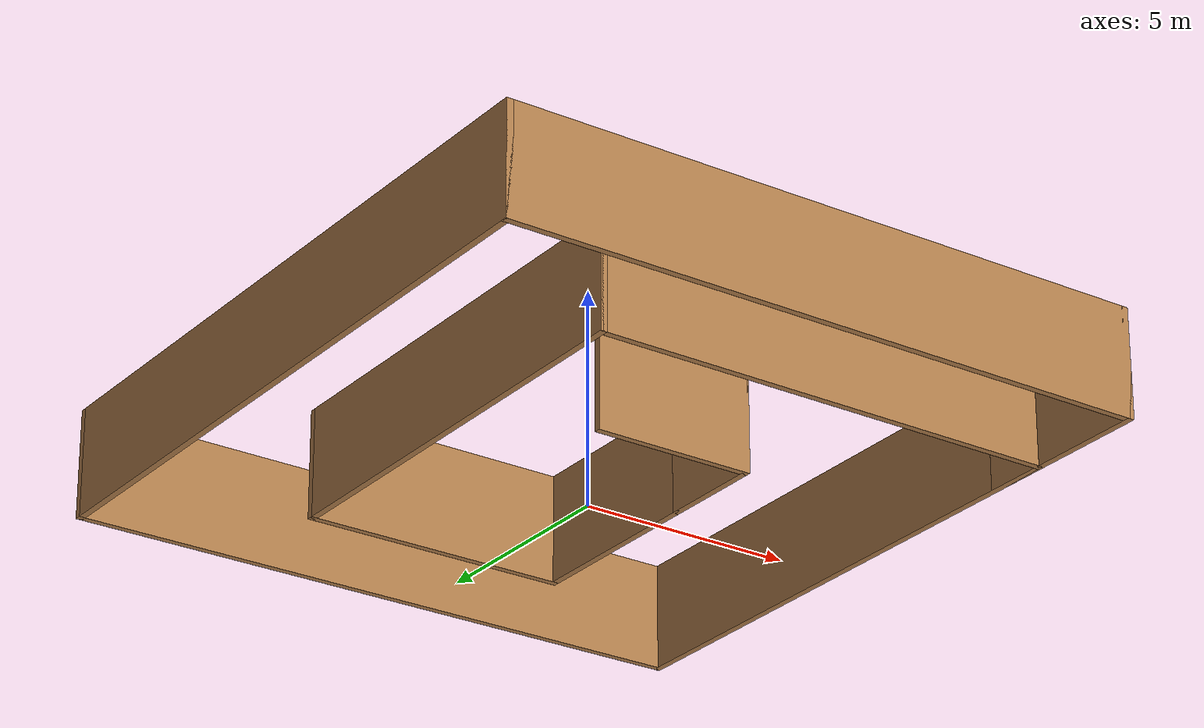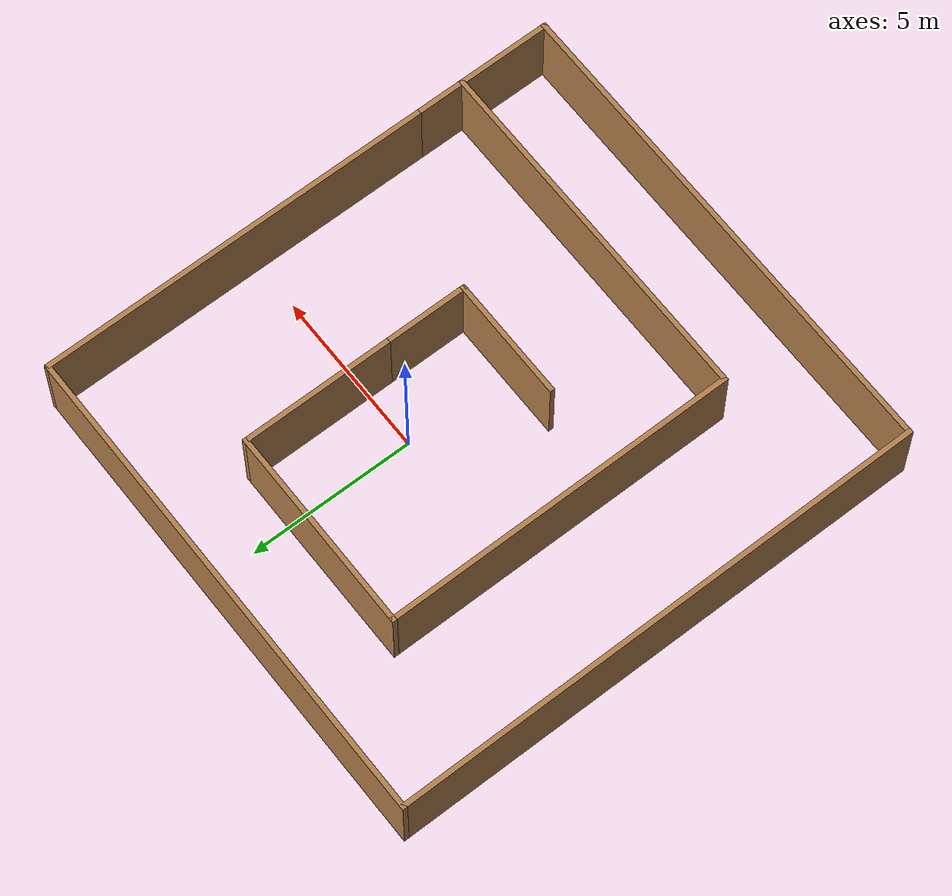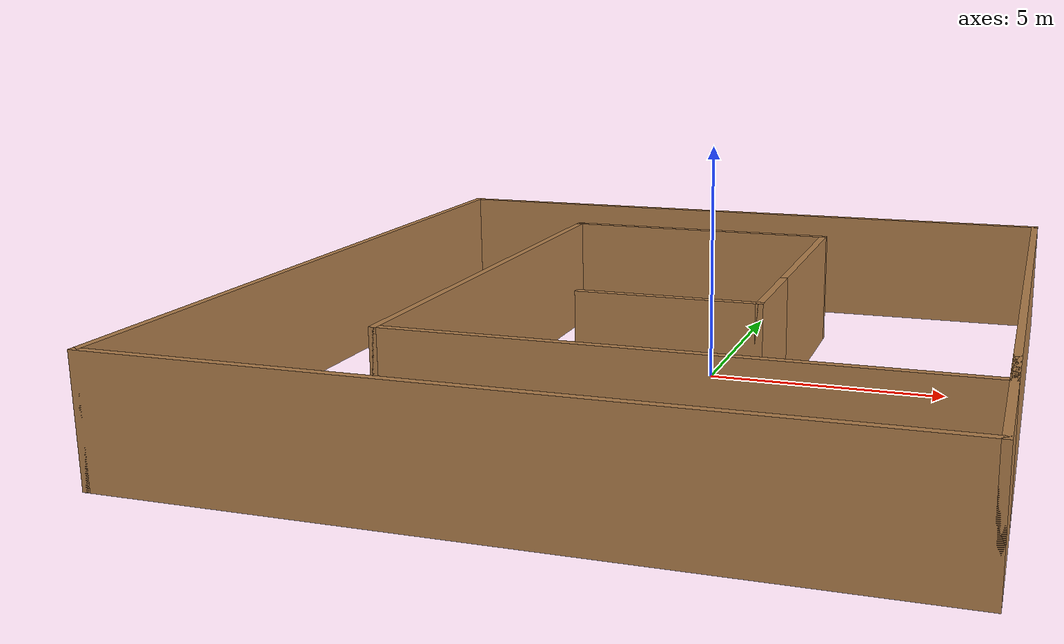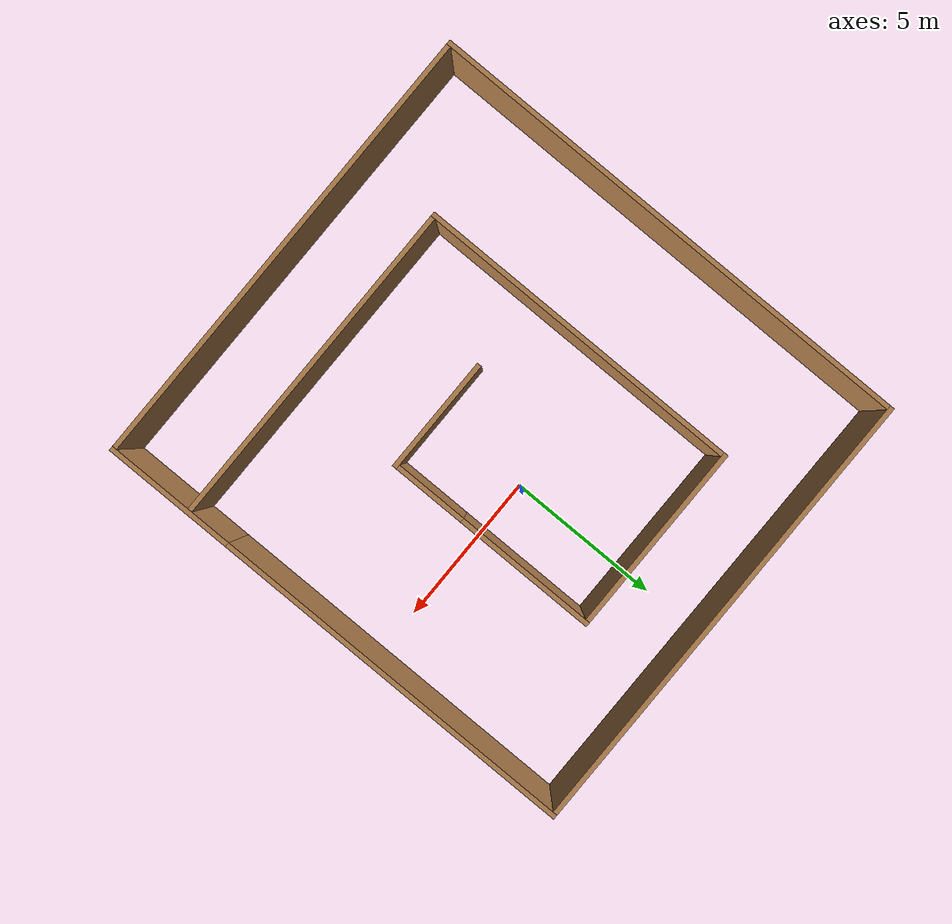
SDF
<?xml version='1.0'?>
<sdf version='1.6'>
  <model name='minjae'>
    <pose frame=''>-0.955 -1.5 0 0 -0 0</pose>
    <link name='Wall_0'>
      <collision name='Wall_0_Collision'>
        <geometry>
          <box>
            <size>3.75 0.15 2.5</size>
          </box>
        </geometry>
        <pose frame=''>0 0 1.25 0 -0 0</pose>
      </collision>
      <visual name='Wall_0_Visual'>
        <pose frame=''>0 0 1.25 0 -0 0</pose>
        <geometry>
          <box>
            <size>3.75 0.15 2.5</size>
          </box>
        </geometry>
        <material>
          <script>
            <uri>file://media/materials/scripts/gazebo.material</uri>
            <name>Gazebo/Wood</name>
          </script>
          <ambient>1 1 1 1</ambient>
        </material>
        <meta>
          <layer>0</layer>
        </meta>
      </visual>
      <pose frame=''>0.875 -1.65 0 0 -0 0</pose>
    </link>
    <link name='Wall_1'>
      <collision name='Wall_1_Collision'>
        <geometry>
          <box>
            <size>2.5 0.15 2.5</size>
          </box>
        </geometry>
        <pose frame=''>0 0 1.25 0 -0 0</pose>
      </collision>
      <visual name='Wall_1_Visual'>
        <pose frame=''>0 0 1.25 0 -0 0</pose>
        <geometry>
          <box>
            <size>2.5 0.15 2.5</size>
          </box>
        </geometry>
        <material>
          <script>
            <uri>file://media/materials/scripts/gazebo.material</uri>
            <name>Gazebo/Wood</name>
          </script>
          <ambient>1 1 1 1</ambient>
        </material>
        <meta>
          <layer>0</layer>
        </meta>
      </visual>
      <pose frame=''>2.675 -0.475 0 0 -0 1.5708</pose>
    </link>
    <link name='Wall_10'>
      <collision name='Wall_10_Collision'>
        <geometry>
          <box>
            <size>4.25 0.15 2.5</size>
          </box>
        </geometry>
        <pose frame=''>0 0 1.25 0 -0 0</pose>
      </collision>
      <visual name='Wall_10_Visual'>
        <pose frame=''>0 0 1.25 0 -0 0</pose>
        <geometry>
          <box>
            <size>4.25 0.15 2.5</size>
          </box>
        </geometry>
        <material>
          <script>
            <uri>file://media/materials/scripts/gazebo.material</uri>
            <name>Gazebo/Wood</name>
          </script>
          <ambient>1 1 1 1</ambient>
        </material>
        <meta>
          <layer>0</layer>
        </meta>
      </visual>
      <pose frame=''>7.425 -6 0 0 -0 1.5708</pose>
    </link>
    <link name='Wall_2'>
      <collision name='Wall_2_Collision'>
        <geometry>
          <box>
            <size>4.75 0.15 2.5</size>
          </box>
        </geometry>
        <pose frame=''>0 0 1.25 0 -0 0</pose>
      </collision>
      <visual name='Wall_2_Visual'>
        <pose frame=''>0 0 1.25 0 -0 0</pose>
        <geometry>
          <box>
            <size>4.75 0.15 2.5</size>
          </box>
        </geometry>
        <material>
          <script>
            <uri>file://media/materials/scripts/gazebo.material</uri>
            <name>Gazebo/Wood</name>
          </script>
          <ambient>1 1 1 1</ambient>
        </material>
        <meta>
          <layer>0</layer>
        </meta>
      </visual>
      <pose frame=''>2.675 3 0 0 -0 1.5708</pose>
    </link>
    <link name='Wall_3'>
      <collision name='Wall_3_Collision'>
        <geometry>
          <box>
            <size>6.25 0.15 2.5</size>
          </box>
        </geometry>
        <pose frame=''>0 0 1.25 0 -0 0</pose>
      </collision>
      <visual name='Wall_3_Visual'>
        <pose frame=''>0 0 1.25 0 -0 0</pose>
        <geometry>
          <box>
            <size>6.25 0.15 2.5</size>
          </box>
        </geometry>
        <material>
          <script>
            <uri>file://media/materials/scripts/gazebo.material</uri>
            <name>Gazebo/Wood</name>
          </script>
          <ambient>1 1 1 1</ambient>
        </material>
        <meta>
          <layer>0</layer>
        </meta>
      </visual>
      <pose frame=''>-0.375 5.3 0 0 -0 3.14159</pose>
    </link>
    <link name='Wall_4'>
      <collision name='Wall_4_Collision'>
        <geometry>
          <box>
            <size>10.75 0.15 2.5</size>
          </box>
        </geometry>
        <pose frame=''>0 0 1.25 0 -0 0</pose>
      </collision>
      <visual name='Wall_4_Visual'>
        <pose frame=''>0 0 1.25 0 -0 0</pose>
        <geometry>
          <box>
            <size>10.75 0.15 2.5</size>
          </box>
        </geometry>
        <material>
          <script>
            <uri>file://media/materials/scripts/gazebo.material</uri>
            <name>Gazebo/Wood</name>
          </script>
          <ambient>1 1 1 1</ambient>
        </material>
        <meta>
          <layer>0</layer>
        </meta>
      </visual>
      <pose frame=''>-3.425 0 0 0 0 -1.5708</pose>
    </link>
    <link name='Wall_5'>
      <collision name='Wall_5_Collision'>
        <geometry>
          <box>
            <size>11 0.15 2.5</size>
          </box>
        </geometry>
        <pose frame=''>0 0 1.25 0 -0 0</pose>
      </collision>
      <visual name='Wall_5_Visual'>
        <pose frame=''>0 0 1.25 0 -0 0</pose>
        <geometry>
          <box>
            <size>11 0.15 2.5</size>
          </box>
        </geometry>
        <material>
          <script>
            <uri>file://media/materials/scripts/gazebo.material</uri>
            <name>Gazebo/Wood</name>
          </script>
          <ambient>1 1 1 1</ambient>
        </material>
        <meta>
          <layer>0</layer>
        </meta>
      </visual>
      <pose frame=''>2 -5.3 0 0 -0 0</pose>
    </link>
    <link name='Wall_6'>
      <collision name='Wall_6_Collision'>
        <geometry>
          <box>
            <size>13.5 0.15 2.5</size>
          </box>
        </geometry>
        <pose frame=''>0 0 1.25 0 -0 0</pose>
      </collision>
      <visual name='Wall_6_Visual'>
        <pose frame=''>0 0 1.25 0 -0 0</pose>
        <geometry>
          <box>
            <size>13.5 0.15 2.5</size>
          </box>
        </geometry>
        <material>
          <script>
            <uri>file://media/materials/scripts/gazebo.material</uri>
            <name>Gazebo/Wood</name>
          </script>
          <ambient>1 1 1 1</ambient>
        </material>
        <meta>
          <layer>0</layer>
        </meta>
      </visual>
      <pose frame=''>7.425 1.375 0 0 -0 1.5708</pose>
    </link>
    <link name='Wall_7'>
      <collision name='Wall_7_Collision'>
        <geometry>
          <box>
            <size>15 0.15 2.5</size>
          </box>
        </geometry>
        <pose frame=''>0 0 1.25 0 -0 0</pose>
      </collision>
      <visual name='Wall_7_Visual'>
        <pose frame=''>0 0 1.25 0 -0 0</pose>
        <geometry>
          <box>
            <size>15 0.15 2.5</size>
          </box>
        </geometry>
        <material>
          <script>
            <uri>file://media/materials/scripts/gazebo.material</uri>
            <name>Gazebo/Wood</name>
          </script>
          <ambient>1 1 1 1</ambient>
        </material>
        <meta>
          <layer>0</layer>
        </meta>
      </visual>
      <pose frame=''>0 8.05 0 0 -0 3.14159</pose>
    </link>
    <link name='Wall_8'>
      <collision name='Wall_8_Collision'>
        <geometry>
          <box>
            <size>16.25 0.15 2.5</size>
          </box>
        </geometry>
        <pose frame=''>0 0 1.25 0 -0 0</pose>
      </collision>
      <visual name='Wall_8_Visual'>
        <pose frame=''>0 0 1.25 0 -0 0</pose>
        <geometry>
          <box>
            <size>16.25 0.15 2.5</size>
          </box>
        </geometry>
        <material>
          <script>
            <uri>file://media/materials/scripts/gazebo.material</uri>
            <name>Gazebo/Wood</name>
          </script>
          <ambient>1 1 1 1</ambient>
        </material>
        <meta>
          <layer>0</layer>
        </meta>
      </visual>
      <pose frame=''>-7.425 0 0 0 0 -1.5708</pose>
    </link>
    <link name='Wall_9'>
      <collision name='Wall_9_Collision'>
        <geometry>
          <box>
            <size>15 0.15 2.5</size>
          </box>
        </geometry>
        <pose frame=''>0 0 1.25 0 -0 0</pose>
      </collision>
      <visual name='Wall_9_Visual'>
        <pose frame=''>0 0 1.25 0 -0 0</pose>
        <geometry>
          <box>
            <size>15 0.15 2.5</size>
          </box>
        </geometry>
        <material>
          <script>
            <uri>file://media/materials/scripts/gazebo.material</uri>
            <name>Gazebo/Wood</name>
          </script>
          <ambient>1 1 1 1</ambient>
        </material>
        <meta>
          <layer>0</layer>
        </meta>
      </visual>
      <pose frame=''>0 -8.05 0 0 -0 0</pose>
    </link>
    <static>1</static>
  </model>
</sdf>
